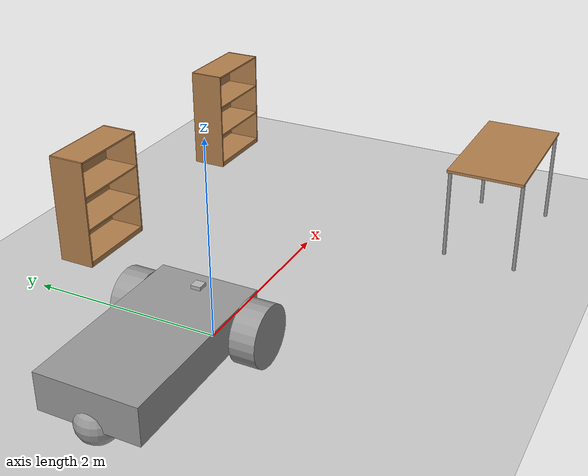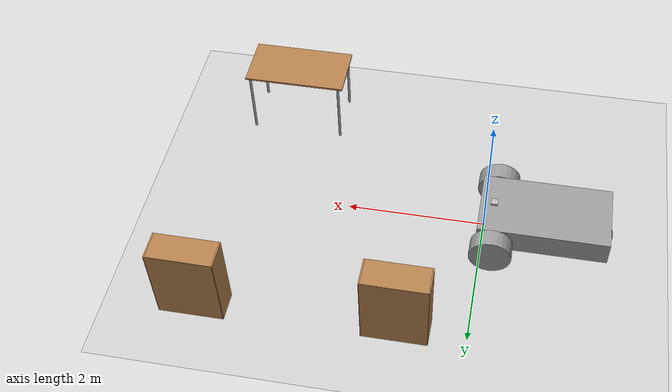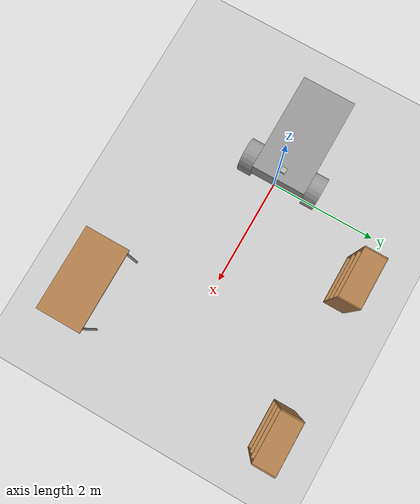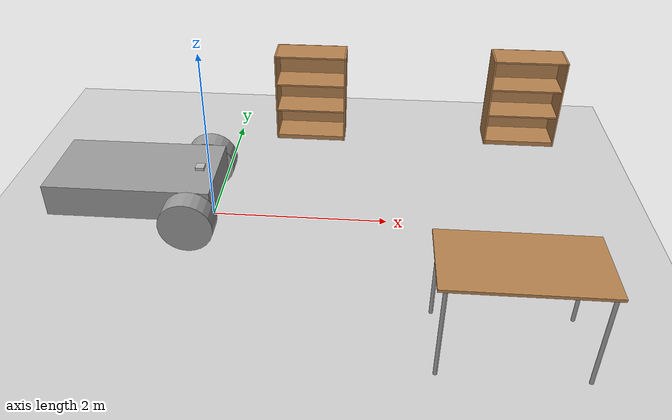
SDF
<sdf version="1.6">
 <world name="default">
  <model name="ground_plane">
   <static>1</static>
   <link name="link">
    <collision name="collision">
     <geometry><plane><normal>0 0 1</normal><size>100 100</size></plane></geometry>
     <surface>
      <contact><collide_bitmask>65535</collide_bitmask></contact>
      <friction><ode><mu>100</mu><mu2>50</mu2></ode></friction>
     </surface>
    </collision>
    <visual name="visual">
     <cast_shadows>0</cast_shadows>
     <geometry><plane><normal>0 0 1</normal><size>100 100</size></plane></geometry>
     <material>
      <script><uri>file://media/materials/scripts/gazebo.material</uri><name>Gazebo/Grey</name></script>
     </material>
    </visual>
   </link>
  </model>
  <model name="Car">
   <link name="link_0">
    <inertial>
     <mass>0.688833</mass>
     <inertia>
      <ixx>0.0653771</ixx>
      <ixy>0</ixy>
      <ixz>0</ixz>
      <iyy>0.204042</iyy>
      <iyz>0</iyz>
      <izz>0.25347</izz>
     </inertia>
     <pose>0 0 0.2 0 -0 0</pose>
    </inertial>
    <pose>-0.006569 -0.057662 0.4 0 -0 0</pose>
    <visual name="visual">
     <geometry><box><size>1.84815 1 0.372719</size></box></geometry>
     <material>
      <lighting>1</lighting>
      <script><uri>file://media/materials/scripts/gazebo.material</uri><name>Gazebo/Grey</name></script>
      <shader type="vertex"><normal_map>__default__</normal_map></shader>
      <ambient>0.3 0.3 0.3 1</ambient>
      <diffuse>0.7 0.7 0.7 1</diffuse>
      <specular>0.01 0.01 0.01 1</specular>
      <emissive>0 0 0 1</emissive>
     </material>
    </visual>
    <collision name="collision">
     <geometry><box><size>1.84815 1 0.372719</size></box></geometry>
     <surface>
      <friction>
       <ode><mu>1</mu><mu2>1</mu2><fdir1>0 0 0</fdir1><slip1>0</slip1><slip2>0</slip2></ode>
       <torsional>
        <coefficient>1</coefficient>
        <patch_radius>0</patch_radius>
        <surface_radius>0</surface_radius>
        <use_patch_radius>1</use_patch_radius>
        <ode><slip>0</slip></ode>
       </torsional>
      </friction>
      <bounce><restitution_coefficient>0</restitution_coefficient><threshold>1e+06</threshold></bounce>
      <contact>
       <collide_without_contact>0</collide_without_contact>
       <collide_without_contact_bitmask>1</collide_without_contact_bitmask>
       <collide_bitmask>1</collide_bitmask>
       <ode>
        <soft_cfm>0</soft_cfm>
        <soft_erp>0.2</soft_erp>
        <kp>1e+13</kp>
        <kd>1</kd>
        <max_vel>0.01</max_vel>
        <min_depth>0</min_depth>
       </ode>
       <bullet>
        <split_impulse>1</split_impulse>
        <split_impulse_penetration_threshold>-0.01</split_impulse_penetration_threshold>
        <soft_cfm>0</soft_cfm>
        <soft_erp>0.2</soft_erp>
        <kp>1e+13</kp>
        <kd>1</kd>
       </bullet>
      </contact>
     </surface>
    </collision>
   </link>
   <link name="link_1">
    <inertial>
     <mass>1</mass>
     <inertia><ixx>0.145833</ixx><ixy>0</ixy><ixz>0</ixz><iyy>0.145833</iyy><iyz>0</iyz><izz>0.125</izz></inertia>
    </inertial>
    <pose>0.689747 -0.682691 0.3 1.5707 -0 0</pose>
    <visual name="visual">
     <geometry><cylinder><radius>0.3</radius><length>0.25</length></cylinder></geometry>
     <material>
      <lighting>1</lighting>
      <script><uri>file://media/materials/scripts/gazebo.material</uri><name>Gazebo/Grey</name></script>
      <shader type="vertex"><normal_map>__default__</normal_map></shader>
      <ambient>0.3 0.3 0.3 1</ambient>
      <diffuse>0.7 0.7 0.7 1</diffuse>
      <specular>0.01 0.01 0.01 1</specular>
      <emissive>0 0 0 1</emissive>
     </material>
    </visual>
    <collision name="collision">
     <geometry><cylinder><radius>0.3</radius><length>0.25</length></cylinder></geometry>
     <surface>
      <friction>
       <ode><mu>1</mu><mu2>1</mu2><fdir1>0 0 0</fdir1><slip1>0</slip1><slip2>0</slip2></ode>
       <torsional>
        <coefficient>1</coefficient>
        <patch_radius>0</patch_radius>
        <surface_radius>0</surface_radius>
        <use_patch_radius>1</use_patch_radius>
        <ode><slip>0</slip></ode>
       </torsional>
      </friction>
      <bounce><restitution_coefficient>0</restitution_coefficient><threshold>1e+06</threshold></bounce>
      <contact>
       <collide_without_contact>0</collide_without_contact>
       <collide_without_contact_bitmask>1</collide_without_contact_bitmask>
       <collide_bitmask>1</collide_bitmask>
       <ode>
        <soft_cfm>0</soft_cfm>
        <soft_erp>0.2</soft_erp>
        <kp>1e+13</kp>
        <kd>1</kd>
        <max_vel>0.01</max_vel>
        <min_depth>0</min_depth>
       </ode>
       <bullet>
        <split_impulse>1</split_impulse>
        <split_impulse_penetration_threshold>-0.01</split_impulse_penetration_threshold>
        <soft_cfm>0</soft_cfm>
        <soft_erp>0.2</soft_erp>
        <kp>1e+13</kp>
        <kd>1</kd>
       </bullet>
      </contact>
     </surface>
    </collision>
   </link>
   <link name="link_1_clone">
    <inertial>
     <mass>1</mass>
     <inertia><ixx>0.145833</ixx><ixy>0</ixy><ixz>0</ixz><iyy>0.145833</iyy><iyz>0</iyz><izz>0.125</izz></inertia>
    </inertial>
    <pose>0.689747 0.567367 0.3 1.5707 -0 0</pose>
    <visual name="visual">
     <geometry><cylinder><radius>0.3</radius><length>0.25</length></cylinder></geometry>
     <material>
      <lighting>1</lighting>
      <script><uri>file://media/materials/scripts/gazebo.material</uri><name>Gazebo/Grey</name></script>
      <shader type="vertex"><normal_map>__default__</normal_map></shader>
      <ambient>0.3 0.3 0.3 1</ambient>
      <diffuse>0.7 0.7 0.7 1</diffuse>
      <specular>0.01 0.01 0.01 1</specular>
      <emissive>0 0 0 1</emissive>
     </material>
    </visual>
    <collision name="collision">
     <geometry><cylinder><radius>0.3</radius><length>0.25</length></cylinder></geometry>
     <surface>
      <friction>
       <ode><mu>1</mu><mu2>1</mu2><fdir1>0 0 0</fdir1><slip1>0</slip1><slip2>0</slip2></ode>
       <torsional>
        <coefficient>1</coefficient>
        <patch_radius>0</patch_radius>
        <surface_radius>0</surface_radius>
        <use_patch_radius>1</use_patch_radius>
        <ode><slip>0</slip></ode>
       </torsional>
      </friction>
      <bounce><restitution_coefficient>0</restitution_coefficient><threshold>1e+06</threshold></bounce>
      <contact>
       <collide_without_contact>0</collide_without_contact>
       <collide_without_contact_bitmask>1</collide_without_contact_bitmask>
       <collide_bitmask>1</collide_bitmask>
       <ode>
        <soft_cfm>0</soft_cfm>
        <soft_erp>0.2</soft_erp>
        <kp>1e+13</kp>
        <kd>1</kd>
        <max_vel>0.01</max_vel>
        <min_depth>0</min_depth>
       </ode>
       <bullet>
        <split_impulse>1</split_impulse>
        <split_impulse_penetration_threshold>-0.01</split_impulse_penetration_threshold>
        <soft_cfm>0</soft_cfm>
        <soft_erp>0.2</soft_erp>
        <kp>1e+13</kp>
        <kd>1</kd>
       </bullet>
      </contact>
     </surface>
    </collision>
   </link>
   <link name="link_2">
    <inertial>
     <mass>1</mass>
     <inertia><ixx>0.1</ixx><ixy>0</ixy><ixz>0</ixz><iyy>0.1</iyy><iyz>0</iyz><izz>0.1</izz></inertia>
     <pose>0 0 0.2 0 -0 0</pose>
    </inertial>
    <pose>-0.802885 -0.057662 0.2 0 -0 0</pose>
    <visual name="visual">
     <geometry><sphere><radius>0.2</radius></sphere></geometry>
     <material>
      <lighting>1</lighting>
      <script><uri>file://media/materials/scripts/gazebo.material</uri><name>Gazebo/Grey</name></script>
      <shader type="vertex"><normal_map>__default__</normal_map></shader>
      <ambient>0.3 0.3 0.3 1</ambient>
      <diffuse>0.7 0.7 0.7 1</diffuse>
      <specular>0.01 0.01 0.01 1</specular>
      <emissive>0 0 0 1</emissive>
     </material>
    </visual>
    <collision name="collision">
     <geometry><sphere><radius>0.2</radius></sphere></geometry>
     <surface>
      <friction>
       <ode><mu>1</mu><mu2>1</mu2><fdir1>0 0 0</fdir1><slip1>0</slip1><slip2>0</slip2></ode>
       <torsional>
        <coefficient>1</coefficient>
        <patch_radius>0</patch_radius>
        <surface_radius>0</surface_radius>
        <use_patch_radius>1</use_patch_radius>
        <ode><slip>0</slip></ode>
       </torsional>
      </friction>
      <bounce><restitution_coefficient>0</restitution_coefficient><threshold>1e+06</threshold></bounce>
      <contact>
       <collide_without_contact>0</collide_without_contact>
       <collide_without_contact_bitmask>1</collide_without_contact_bitmask>
       <collide_bitmask>1</collide_bitmask>
       <ode>
        <soft_cfm>0</soft_cfm>
        <soft_erp>0.2</soft_erp>
        <kp>1e+13</kp>
        <kd>1</kd>
        <max_vel>0.01</max_vel>
        <min_depth>0</min_depth>
       </ode>
       <bullet>
        <split_impulse>1</split_impulse>
        <split_impulse_penetration_threshold>-0.01</split_impulse_penetration_threshold>
        <soft_cfm>0</soft_cfm>
        <soft_erp>0.2</soft_erp>
        <kp>1e+13</kp>
        <kd>1</kd>
       </bullet>
      </contact>
     </surface>
    </collision>
   </link>
   <model name="depth_camera">
    <link name="link">
     <pose>0 0 0.05 0 -0 0</pose>
     <inertial>
      <mass>0.1</mass>
      <inertia>
       <ixx>0.000166667</ixx>
       <iyy>0.000166667</iyy>
       <izz>0.000166667</izz>
       <ixy>0</ixy>
       <ixz>0</ixz>
       <iyz>0</iyz>
      </inertia>
     </inertial>
     <collision name="collision"><geometry><box><size>0.1 0.1 0.1</size></box></geometry></collision>
     <visual name="visual"><geometry><box><size>0.1 0.1 0.1</size></box></geometry></visual>
     <sensor name="camera" type="depth">
      <camera name="__default__">
       <horizontal_fov>1.047</horizontal_fov>
       <image><width>320</width><height>240</height></image>
       <clip><near>0.1</near><far>100</far></clip>
      </camera>
      <always_on>1</always_on>
      <update_rate>30</update_rate>
      <visualize>1</visualize>
     </sensor>
    </link>
    <pose>0.72309 -0.063391 0.522217 0 -0 0</pose>
   </model>
   <joint name="link_0_JOINT_0" type="revolute">
    <parent>link_0</parent>
    <child>link_1_clone</child>
    <axis>
     <xyz>0 0 1</xyz>
     <use_parent_model_frame>0</use_parent_model_frame>
     <limit>
      <lower>-1.79769e+308</lower>
      <upper>1.79769e+308</upper>
      <effort>-1</effort>
      <velocity>-1</velocity>
     </limit>
     <dynamics>
      <spring_reference>0</spring_reference>
      <spring_stiffness>0</spring_stiffness>
      <damping>0</damping>
     </dynamics>
    </axis>
    <physics>
     <ode><limit><cfm>0</cfm><erp>0.2</erp></limit><suspension><cfm>0</cfm><erp>0.2</erp></suspension></ode>
    </physics>
   </joint>
   <joint name="link_0_JOINT_1" type="revolute">
    <parent>link_0</parent>
    <child>link_1</child>
    <axis>
     <xyz>0 0 1</xyz>
     <use_parent_model_frame>0</use_parent_model_frame>
     <limit>
      <lower>-1.79769e+308</lower>
      <upper>1.79769e+308</upper>
      <effort>-1</effort>
      <velocity>-1</velocity>
     </limit>
     <dynamics>
      <spring_reference>0</spring_reference>
      <spring_stiffness>0</spring_stiffness>
      <damping>0</damping>
     </dynamics>
    </axis>
    <physics>
     <ode><limit><cfm>0</cfm><erp>0.2</erp></limit><suspension><cfm>0</cfm><erp>0.2</erp></suspension></ode>
    </physics>
   </joint>
   <joint name="link_0_JOINT_2" type="ball">
    <parent>link_0</parent>
    <child>link_2</child>
    <physics>
     <ode><limit><cfm>0</cfm><erp>0.2</erp></limit><suspension><cfm>0</cfm><erp>0.2</erp></suspension></ode>
    </physics>
   </joint>
   <joint name="link_0_JOINT_4" type="fixed">
    <parent>link_0</parent>
    <child>depth_camera::link</child>
    <physics>
     <ode><limit><cfm>0</cfm><erp>0.2</erp></limit><suspension><cfm>0</cfm><erp>0.2</erp></suspension></ode>
    </physics>
   </joint>
   <static>0</static>
   <plugin name="Follower" filename="libFollowerPlugin.so"/>
   <pose>-0.844658 0.121852 0 0 -0 0</pose>
  </model>
  <model name="bookshelf">
   <static>1</static>
   <link name="link">
    <inertial><mass>1</mass></inertial>
    <collision name="back">
     <pose>0 0.005 0.6 0 -0 0</pose>
     <geometry><box><size>0.9 0.01 1.2</size></box></geometry>
    </collision>
    <visual name="visual1">
     <pose>0 0.005 0.6 0 -0 0</pose>
     <geometry><box><size>0.9 0.01 1.2</size></box></geometry>
     <material>
      <script><uri>file://media/materials/scripts/gazebo.material</uri><name>Gazebo/Wood</name></script>
     </material>
    </visual>
    <collision name="left_side">
     <pose>0.45 -0.195 0.6 0 -0 0</pose>
     <geometry><box><size>0.02 0.4 1.2</size></box></geometry>
    </collision>
    <visual name="visual2">
     <pose>0.45 -0.195 0.6 0 -0 0</pose>
     <geometry><box><size>0.02 0.4 1.2</size></box></geometry>
     <material>
      <script><uri>file://media/materials/scripts/gazebo.material</uri><name>Gazebo/Wood</name></script>
     </material>
    </visual>
    <collision name="right_side">
     <pose>-0.45 -0.195 0.6 0 -0 0</pose>
     <geometry><box><size>0.02 0.4 1.2</size></box></geometry>
    </collision>
    <visual name="visual3">
     <pose>-0.45 -0.195 0.6 0 -0 0</pose>
     <geometry><box><size>0.02 0.4 1.2</size></box></geometry>
     <material>
      <script><uri>file://media/materials/scripts/gazebo.material</uri><name>Gazebo/Wood</name></script>
     </material>
    </visual>
    <collision name="bottom">
     <pose>0 -0.195 0.03 0 -0 0</pose>
     <geometry><box><size>0.88 0.4 0.06</size></box></geometry>
    </collision>
    <visual name="visual4">
     <pose>0 -0.195 0.03 0 -0 0</pose>
     <geometry><box><size>0.88 0.4 0.06</size></box></geometry>
     <material>
      <script><uri>file://media/materials/scripts/gazebo.material</uri><name>Gazebo/Wood</name></script>
     </material>
    </visual>
    <collision name="top">
     <pose>0 -0.195 1.19 0 -0 0</pose>
     <geometry><box><size>0.88 0.4 0.02</size></box></geometry>
    </collision>
    <visual name="visual5">
     <pose>0 -0.195 1.19 0 -0 0</pose>
     <geometry><box><size>0.88 0.4 0.02</size></box></geometry>
     <material>
      <script><uri>file://media/materials/scripts/gazebo.material</uri><name>Gazebo/Wood</name></script>
     </material>
    </visual>
    <collision name="low_shelf">
     <pose>0 -0.195 0.43 0 -0 0</pose>
     <geometry><box><size>0.88 0.4 0.02</size></box></geometry>
    </collision>
    <visual name="visual6">
     <pose>0 -0.195 0.43 0 -0 0</pose>
     <geometry><box><size>0.88 0.4 0.02</size></box></geometry>
     <material>
      <script><uri>file://media/materials/scripts/gazebo.material</uri><name>Gazebo/Wood</name></script>
     </material>
    </visual>
    <collision name="high_shelf">
     <pose>0 -0.195 0.8 0 -0 0</pose>
     <geometry><box><size>0.88 0.4 0.02</size></box></geometry>
    </collision>
    <visual name="visual7">
     <pose>0 -0.195 0.8 0 -0 0</pose>
     <geometry><box><size>0.88 0.4 0.02</size></box></geometry>
     <material>
      <script><uri>file://media/materials/scripts/gazebo.material</uri><name>Gazebo/Wood</name></script>
     </material>
    </visual>
   </link>
   <pose>0.96399 2.17087 0 0 -0 0</pose>
  </model>
  <model name="bookshelf_0">
   <static>1</static>
   <link name="link">
    <inertial><mass>1</mass></inertial>
    <collision name="back">
     <pose>0 0.005 0.6 0 -0 0</pose>
     <geometry><box><size>0.9 0.01 1.2</size></box></geometry>
    </collision>
    <visual name="visual1">
     <pose>0 0.005 0.6 0 -0 0</pose>
     <geometry><box><size>0.9 0.01 1.2</size></box></geometry>
     <material>
      <script><uri>file://media/materials/scripts/gazebo.material</uri><name>Gazebo/Wood</name></script>
     </material>
    </visual>
    <collision name="left_side">
     <pose>0.45 -0.195 0.6 0 -0 0</pose>
     <geometry><box><size>0.02 0.4 1.2</size></box></geometry>
    </collision>
    <visual name="visual2">
     <pose>0.45 -0.195 0.6 0 -0 0</pose>
     <geometry><box><size>0.02 0.4 1.2</size></box></geometry>
     <material>
      <script><uri>file://media/materials/scripts/gazebo.material</uri><name>Gazebo/Wood</name></script>
     </material>
    </visual>
    <collision name="right_side">
     <pose>-0.45 -0.195 0.6 0 -0 0</pose>
     <geometry><box><size>0.02 0.4 1.2</size></box></geometry>
    </collision>
    <visual name="visual3">
     <pose>-0.45 -0.195 0.6 0 -0 0</pose>
     <geometry><box><size>0.02 0.4 1.2</size></box></geometry>
     <material>
      <script><uri>file://media/materials/scripts/gazebo.material</uri><name>Gazebo/Wood</name></script>
     </material>
    </visual>
    <collision name="bottom">
     <pose>0 -0.195 0.03 0 -0 0</pose>
     <geometry><box><size>0.88 0.4 0.06</size></box></geometry>
    </collision>
    <visual name="visual4">
     <pose>0 -0.195 0.03 0 -0 0</pose>
     <geometry><box><size>0.88 0.4 0.06</size></box></geometry>
     <material>
      <script><uri>file://media/materials/scripts/gazebo.material</uri><name>Gazebo/Wood</name></script>
     </material>
    </visual>
    <collision name="top">
     <pose>0 -0.195 1.19 0 -0 0</pose>
     <geometry><box><size>0.88 0.4 0.02</size></box></geometry>
    </collision>
    <visual name="visual5">
     <pose>0 -0.195 1.19 0 -0 0</pose>
     <geometry><box><size>0.88 0.4 0.02</size></box></geometry>
     <material>
      <script><uri>file://media/materials/scripts/gazebo.material</uri><name>Gazebo/Wood</name></script>
     </material>
    </visual>
    <collision name="low_shelf">
     <pose>0 -0.195 0.43 0 -0 0</pose>
     <geometry><box><size>0.88 0.4 0.02</size></box></geometry>
    </collision>
    <visual name="visual6">
     <pose>0 -0.195 0.43 0 -0 0</pose>
     <geometry><box><size>0.88 0.4 0.02</size></box></geometry>
     <material>
      <script><uri>file://media/materials/scripts/gazebo.material</uri><name>Gazebo/Wood</name></script>
     </material>
    </visual>
    <collision name="high_shelf">
     <pose>0 -0.195 0.8 0 -0 0</pose>
     <geometry><box><size>0.88 0.4 0.02</size></box></geometry>
    </collision>
    <visual name="visual7">
     <pose>0 -0.195 0.8 0 -0 0</pose>
     <geometry><box><size>0.88 0.4 0.02</size></box></geometry>
     <material>
      <script><uri>file://media/materials/scripts/gazebo.material</uri><name>Gazebo/Wood</name></script>
     </material>
    </visual>
   </link>
   <pose>3.75542 2.22657 0 0 -0 0</pose>
  </model>
  <model name="table">
   <static>1</static>
   <link name="link">
    <collision name="surface">
     <pose>0 0 1 0 -0 0</pose>
     <geometry><box><size>1.5 0.8 0.03</size></box></geometry>
     <surface><friction><ode><mu>0.6</mu><mu2>0.6</mu2></ode></friction></surface>
    </collision>
    <visual name="visual1">
     <pose>0 0 1 0 -0 0</pose>
     <geometry><box><size>1.5 0.8 0.03</size></box></geometry>
     <material>
      <script><uri>file://media/materials/scripts/gazebo.material</uri><name>Gazebo/Wood</name></script>
     </material>
    </visual>
    <collision name="front_left_leg">
     <pose>0.68 0.38 0.5 0 -0 0</pose>
     <geometry><cylinder><radius>0.02</radius><length>1</length></cylinder></geometry>
    </collision>
    <visual name="front_left_leg">
     <pose>0.68 0.38 0.5 0 -0 0</pose>
     <geometry><cylinder><radius>0.02</radius><length>1</length></cylinder></geometry>
     <material>
      <script><uri>file://media/materials/scripts/gazebo.material</uri><name>Gazebo/Grey</name></script>
     </material>
    </visual>
    <collision name="front_right_leg">
     <pose>0.68 -0.38 0.5 0 -0 0</pose>
     <geometry><cylinder><radius>0.02</radius><length>1</length></cylinder></geometry>
    </collision>
    <visual name="front_right_leg">
     <pose>0.68 -0.38 0.5 0 -0 0</pose>
     <geometry><cylinder><radius>0.02</radius><length>1</length></cylinder></geometry>
     <material>
      <script><uri>file://media/materials/scripts/gazebo.material</uri><name>Gazebo/Grey</name></script>
     </material>
    </visual>
    <collision name="back_right_leg">
     <pose>-0.68 -0.38 0.5 0 -0 0</pose>
     <geometry><cylinder><radius>0.02</radius><length>1</length></cylinder></geometry>
    </collision>
    <visual name="back_right_leg">
     <pose>-0.68 -0.38 0.5 0 -0 0</pose>
     <geometry><cylinder><radius>0.02</radius><length>1</length></cylinder></geometry>
     <material>
      <script><uri>file://media/materials/scripts/gazebo.material</uri><name>Gazebo/Grey</name></script>
     </material>
    </visual>
    <collision name="back_left_leg">
     <pose>-0.68 0.38 0.5 0 -0 0</pose>
     <geometry><cylinder><radius>0.02</radius><length>1</length></cylinder></geometry>
    </collision>
    <visual name="back_left_leg">
     <pose>-0.68 0.38 0.5 0 -0 0</pose>
     <geometry><cylinder><radius>0.02</radius><length>1</length></cylinder></geometry>
     <material>
      <script><uri>file://media/materials/scripts/gazebo.material</uri><name>Gazebo/Grey</name></script>
     </material>
    </visual>
   </link>
   <pose>3.11463 -1.80049 0 0 -0 0</pose>
  </model>
 </world>
</sdf>
